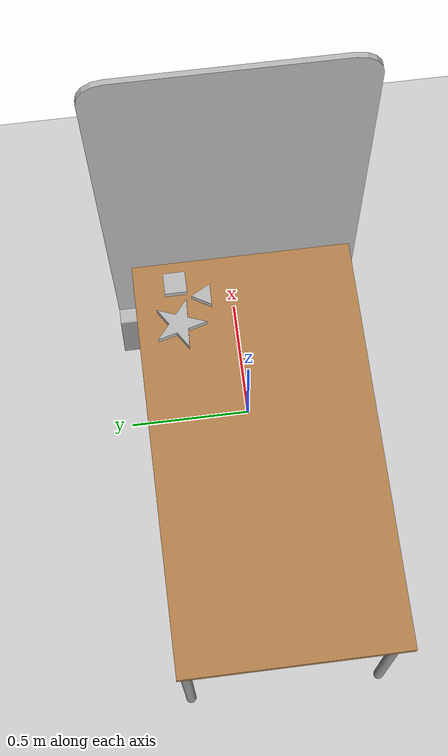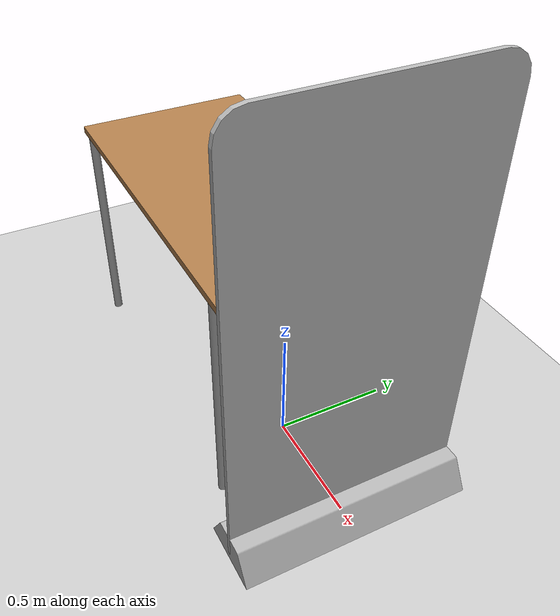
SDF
<sdf version="1.7">
 <world name="default">
  <light name="sun" type="directional">
   <pose>0 0 10 0 -0 0</pose>
   <diffuse>0.8 0.8 0.8 1</diffuse>
   <specular>0.2 0.2 0.2 1</specular>
   <attenuation>
    <range>1000</range>
    <constant>0.9</constant>
    <linear>0.01</linear>
    <quadratic>0.001</quadratic>
   </attenuation>
   <direction>-0.5 0.1 -0.9</direction>
   <spot><inner_angle>0</inner_angle><outer_angle>0</outer_angle><falloff>0</falloff></spot>
  </light>
  <model name="ground_plane">
   <static>1</static>
   <link name="ground_link">
    <collision name="collision">
     <geometry><plane><normal>0 0 1</normal><size>100 100</size></plane></geometry>
     <surface><friction><ode><mu>100</mu><mu2>50</mu2></ode></friction></surface>
    </collision>
    <visual name="visual">
     <cast_shadows>0</cast_shadows>
     <geometry><plane><normal>0 0 1</normal><size>100 100</size></plane></geometry>
     <material>
      <script><uri>file://media/materials/scripts/gazebo.material</uri><name>Gazebo/Grey</name></script>
     </material>
    </visual>
   </link>
  </model>
  <gravity>0 0 -9.8</gravity>
  <magnetic_field>6e-06 2.3e-05 -4.2e-05</magnetic_field>
  <atmosphere type="adiabatic"/>
  <physics type="ode">
   <max_step_size>0.001</max_step_size>
   <real_time_factor>1</real_time_factor>
   <real_time_update_rate>1000</real_time_update_rate>
  </physics>
  <scene><ambient>0.4 0.4 0.4 1</ambient><background>0.7 0.7 0.7 1</background><shadows>1</shadows></scene>
  <spherical_coordinates>
   <surface_model>EARTH_WGS84</surface_model>
   <latitude_deg>0</latitude_deg>
   <longitude_deg>0</longitude_deg>
   <elevation>0</elevation>
   <heading_deg>0</heading_deg>
  </spherical_coordinates>
  <model name="star">
   <link name="base_link">
    <inertial>
     <pose>-0.000133 -8.7e-05 0 0 -0 0</pose>
     <mass>0.52982</mass>
     <inertia>
      <ixx>0.000718324</ixx>
      <ixy>-1.68138e-06</ixy>
      <ixz>-6.17275e-20</ixz>
      <iyy>0.000716264</iyy>
      <iyz>4.76456e-21</iyz>
      <izz>0.00121382</izz>
     </inertia>
    </inertial>
    <collision name="base_link_collision">
     <geometry><mesh><scale>1 1 1</scale><uri>model://star/meshes/base_link.STL</uri></mesh></geometry>
    </collision>
    <visual name="base_link_visual">
     <geometry><mesh><scale>1 1 1</scale><uri>model://star/meshes/base_link.STL</uri></mesh></geometry>
    </visual>
   </link>
   <pose>1.1e-05 0.25001 1.04 1.4e-05 4.7e-05 -0.046316</pose>
  </model>
  <model name="trangle">
   <link name="base_link">
    <inertial>
     <mass>0.138564</mass>
     <inertia>
      <ixx>6.58186e-05</ixx>
      <ixy>7.4776e-21</ixy>
      <ixz>1.07487e-20</ixz>
      <iyy>6.58186e-05</iyy>
      <iyz>5.2163e-21</iyz>
      <izz>7.39e-05</izz>
     </inertia>
    </inertial>
    <collision name="base_link_collision">
     <geometry><mesh><scale>1 1 1</scale><uri>model://trangle/meshes/base_link.STL</uri></mesh></geometry>
    </collision>
    <visual name="base_link_visual">
     <geometry><mesh><scale>1 1 1</scale><uri>model://trangle/meshes/base_link.STL</uri></mesh></geometry>
    </visual>
   </link>
   <pose>0.1 0.15 1.04 0 0 -0.010796</pose>
  </model>
  <model name="cube">
   <link name="base_link">
    <inertial>
     <mass>0.32</mass>
     <inertia>
      <ixx>0.000237334</ixx>
      <ixy>2.6068e-20</ixy>
      <ixz>1.1294e-21</ixz>
      <iyy>0.000237334</iyy>
      <iyz>1.91102e-20</iyz>
      <izz>0.00034134</izz>
     </inertia>
    </inertial>
    <collision name="base_link_collision">
     <geometry><mesh><scale>1 1 1</scale><uri>model://cube/meshes/base_link.STL</uri></mesh></geometry>
    </collision>
    <visual name="base_link_visual">
     <geometry><mesh><scale>1 1 1</scale><uri>model://cube/meshes/base_link.STL</uri></mesh></geometry>
    </visual>
   </link>
   <pose>0.160001 0.250003 1.04 0 -0 1e-06</pose>
  </model>
  <model name="table">
   <static>1</static>
   <link name="link">
    <collision name="surface">
     <pose>0 0 1 0 -0 0</pose>
     <geometry><box><size>1.5 0.8 0.03</size></box></geometry>
     <surface><friction><ode><mu>0.6</mu><mu2>0.6</mu2></ode></friction></surface>
    </collision>
    <visual name="visual1">
     <pose>0 0 1 0 -0 0</pose>
     <geometry><box><size>1.5 0.8 0.03</size></box></geometry>
     <material>
      <script><uri>file://media/materials/scripts/gazebo.material</uri><name>Gazebo/Wood</name></script>
     </material>
    </visual>
    <collision name="front_left_leg_collision">
     <pose>0.68 0.38 0.5 0 -0 0</pose>
     <geometry><cylinder><radius>0.02</radius><length>1</length></cylinder></geometry>
    </collision>
    <visual name="front_left_leg_visual">
     <pose>0.68 0.38 0.5 0 -0 0</pose>
     <geometry><cylinder><radius>0.02</radius><length>1</length></cylinder></geometry>
     <material>
      <script><uri>file://media/materials/scripts/gazebo.material</uri><name>Gazebo/Grey</name></script>
     </material>
    </visual>
    <collision name="front_right_leg_collision">
     <pose>0.68 -0.38 0.5 0 -0 0</pose>
     <geometry><cylinder><radius>0.02</radius><length>1</length></cylinder></geometry>
    </collision>
    <visual name="front_right_leg_visual">
     <pose>0.68 -0.38 0.5 0 -0 0</pose>
     <geometry><cylinder><radius>0.02</radius><length>1</length></cylinder></geometry>
     <material>
      <script><uri>file://media/materials/scripts/gazebo.material</uri><name>Gazebo/Grey</name></script>
     </material>
    </visual>
    <collision name="back_right_leg_collision">
     <pose>-0.68 -0.38 0.5 0 -0 0</pose>
     <geometry><cylinder><radius>0.02</radius><length>1</length></cylinder></geometry>
    </collision>
    <visual name="back_right_leg_visual">
     <pose>-0.68 -0.38 0.5 0 -0 0</pose>
     <geometry><cylinder><radius>0.02</radius><length>1</length></cylinder></geometry>
     <material>
      <script><uri>file://media/materials/scripts/gazebo.material</uri><name>Gazebo/Grey</name></script>
     </material>
    </visual>
    <collision name="back_left_leg_collision">
     <pose>-0.68 0.38 0.5 0 -0 0</pose>
     <geometry><cylinder><radius>0.02</radius><length>1</length></cylinder></geometry>
    </collision>
    <visual name="back_left_leg_visual">
     <pose>-0.68 0.38 0.5 0 -0 0</pose>
     <geometry><cylinder><radius>0.02</radius><length>1</length></cylinder></geometry>
     <material>
      <script><uri>file://media/materials/scripts/gazebo.material</uri><name>Gazebo/Grey</name></script>
     </material>
    </visual>
   </link>
   <pose>-0.5 0 0 0 -0 0</pose>
  </model>
  <model name="board">
   <link name="base_link">
    <inertial>
     <pose>0 -0 0.551885 0 -0 0</pose>
     <mass>63.153</mass>
     <inertia>
      <ixx>26.7135</ixx>
      <ixy>-1.05606e-14</ixy>
      <ixz>5.56255e-17</ixz>
      <iyy>21.6015</iyy>
      <iyz>1.17624e-13</iyz>
      <izz>5.3885</izz>
     </inertia>
    </inertial>
    <collision name="base_link_collision">
     <geometry><mesh><scale>1 1 1</scale><uri>model://board/meshes/base_link.STL</uri></mesh></geometry>
    </collision>
    <collision name="base_link_fixed_joint_lump__blank_link_collision_1">
     <pose>-0.01 0 0.9279 0 -0 0</pose>
     <geometry><mesh><scale>1 1 1</scale><uri>model://board/meshes/blank_link.dae</uri></mesh></geometry>
    </collision>
    <visual name="base_link_visual">
     <geometry><mesh><scale>1 1 1</scale><uri>model://board/meshes/base_link.STL</uri></mesh></geometry>
    </visual>
    <visual name="base_link_fixed_joint_lump__blank_link_visual_1">
     <pose>-0.01 0 0.9279 0 -0 0</pose>
     <geometry><mesh><scale>1 1 1</scale><uri>model://board/meshes/blank_link.dae</uri></mesh></geometry>
    </visual>
   </link>
   <pose>0.5 0 -3e-06 0 -0 0</pose>
  </model>
 </world>
</sdf>
